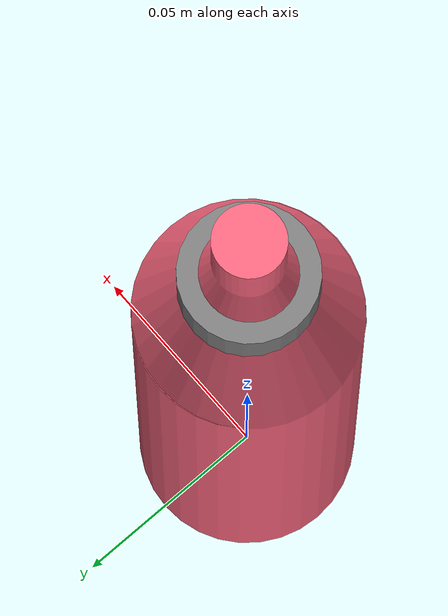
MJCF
<mujoco model="bottle">
	<compiler meshdir="assets" texturedir="assets" />
    <asset>
        <mesh name="bottle_mesh" file="bottle.stl" scale=".63 .63 1" />
	<texture name="texgeom" type="cube" builtin="gradient" width="128" height="128"
		 rgb1="1 0.1 0.3" rgb2="1 0.7 0.7"/>
	<material name='object' texture="texgeom" texuniform="true"/>
    </asset>

    <default>
        <default class="collision">
            <geom condim="6" group="0" />
        </default>
        <default class="visual">
        	<geom condim="6" conaffinity="0" contype="0" mass="0" gap="10"/>
        </default>
    </default>

    <worldbody>
      <light mode="targetbodycom" target="base_link" directional="false" diffuse=".8 .8 .8" specular="0.3 0.3 0.3" pos="0 0 4.0" dir="0 0 -1" active="false"/>
      <body name="base_link">
        <freejoint name="root" />
        <inertial pos="0 0 0.06" mass="0.53" diaginertia="0.00120844 0.00120844 0.00018878"/>
        <geom class="collision" name ="collision" friction="1 0.03 0.04" type="cylinder" size="0.016 0.09" pos="0.0 0.0 0.09"/>
        <geom class="visual" group="1" type="mesh" mesh="bottle_mesh" material="object" />
        <geom name ="objectPos" class="visual" group="4" type="sphere" size="0.005"  pos="0.0 0.0 0.08" euler="0 0 0"/>
        <geom name ="grabbingPos1" class="visual" group="4" type="cylinder" size="0.002 0.005"  pos="0.0 0.0 0.06" euler="0 0 0"/>
      </body>
    </worldbody>
</mujoco>
